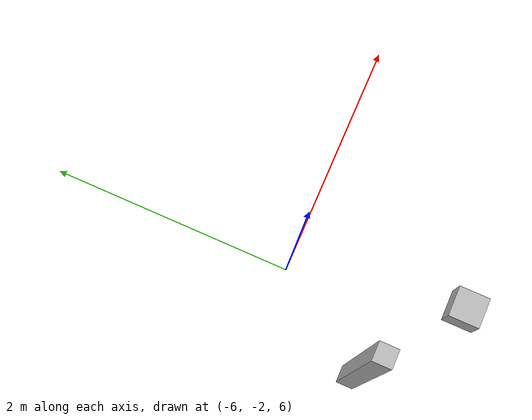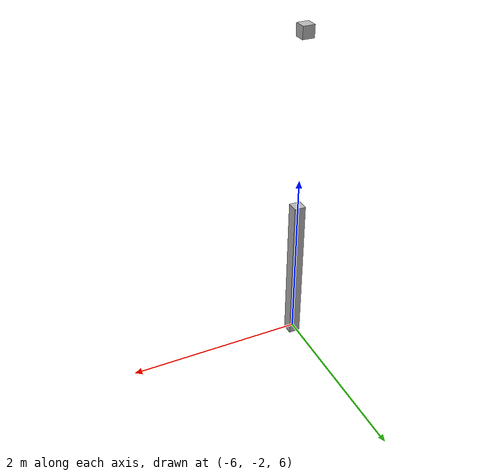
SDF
<sdf version="1.7">
 <world name="default">
  <model name="orthogonal_747_2.000.15_TS">
   <static>1</static>
   <link name="z_link_4_1_0">
    <inertial>
     <mass>1</mass>
     <inertia>
      <ixx>0.166667</ixx>
      <ixy>0</ixy>
      <ixz>0</ixz>
      <iyy>0.166667</iyy>
      <iyz>0</iyz>
      <izz>0.166667</izz>
     </inertia>
    </inertial>
    <pose>0 2.15 8.6 0 -0 0</pose>
    <visual name="visual_0">
     <laser_retro>3697</laser_retro>
     <geometry><box><size>0.15 1e-06 2</size></box></geometry>
     <material>
      <script><name>Gazebo/Grey</name><uri>file://media/materials/scripts/gazebo.material</uri></script>
      <shader type="pixel"><normal_map>__default__</normal_map></shader>
      <ambient>0.678 0.498 0.659 1</ambient>
      <diffuse>0.7 0.7 0.7 1</diffuse>
      <specular>0.01 0.01 0.01 1</specular>
      <emissive>0 0 0 1</emissive>
     </material>
     <pose>0 -0.075 0 0 -0 0</pose>
     <transparency>1</transparency>
    </visual>
    <visual name="visual_1">
     <laser_retro>3698</laser_retro>
     <geometry><box><size>0.15 1e-06 2</size></box></geometry>
     <material>
      <script><name>Gazebo/Grey</name><uri>file://media/materials/scripts/gazebo.material</uri></script>
      <shader type="pixel"><normal_map>__default__</normal_map></shader>
      <ambient>0.447 0.624 0.812 1</ambient>
      <diffuse>0.7 0.7 0.7 1</diffuse>
      <specular>0.01 0.01 0.01 1</specular>
      <emissive>0 0 0 1</emissive>
     </material>
     <pose>0 0.075 0 0 -0 0</pose>
     <transparency>1</transparency>
    </visual>
    <visual name="visual_2">
     <laser_retro>3699</laser_retro>
     <geometry><box><size>0.15 0.15 1e-06</size></box></geometry>
     <material>
      <script><name>Gazebo/Grey</name><uri>file://media/materials/scripts/gazebo.material</uri></script>
      <shader type="pixel"><normal_map>__default__</normal_map></shader>
      <ambient>0.988 0.686 0.243 1</ambient>
      <diffuse>0.7 0.7 0.7 1</diffuse>
      <specular>0.01 0.01 0.01 1</specular>
      <emissive>0 0 0 1</emissive>
     </material>
     <pose>0 0 -1 0 -0 0</pose>
     <transparency>1</transparency>
    </visual>
    <visual name="visual_3">
     <laser_retro>3700</laser_retro>
     <geometry><box><size>1e-06 0.15 2</size></box></geometry>
     <material>
      <script><name>Gazebo/Grey</name><uri>file://media/materials/scripts/gazebo.material</uri></script>
      <shader type="pixel"><normal_map>__default__</normal_map></shader>
      <ambient>0.988 0.914 0.31 1</ambient>
      <diffuse>0.7 0.7 0.7 1</diffuse>
      <specular>0.01 0.01 0.01 1</specular>
      <emissive>0 0 0 1</emissive>
     </material>
     <pose>0.075 0 0 0 -0 0</pose>
     <transparency>1</transparency>
    </visual>
    <visual name="visual_4">
     <laser_retro>3701</laser_retro>
     <geometry><box><size>0.15 0.15 1e-06</size></box></geometry>
     <material>
      <script><name>Gazebo/Grey</name><uri>file://media/materials/scripts/gazebo.material</uri></script>
      <shader type="pixel"><normal_map>__default__</normal_map></shader>
      <ambient>0.937 0.161 0.161 1</ambient>
      <diffuse>0.7 0.7 0.7 1</diffuse>
      <specular>0.01 0.01 0.01 1</specular>
      <emissive>0 0 0 1</emissive>
     </material>
     <pose>0 0 1 0 -0 0</pose>
     <transparency>1</transparency>
    </visual>
    <visual name="visual_5">
     <laser_retro>3702</laser_retro>
     <geometry><box><size>1e-06 0.15 2</size></box></geometry>
     <material>
      <script><name>Gazebo/Grey</name><uri>file://media/materials/scripts/gazebo.material</uri></script>
      <shader type="pixel"><normal_map>__default__</normal_map></shader>
      <ambient>0.541 0.886 0.204 1</ambient>
      <diffuse>0.7 0.7 0.7 1</diffuse>
      <specular>0.01 0.01 0.01 1</specular>
      <emissive>0 0 0 1</emissive>
     </material>
     <pose>-0.075 0 0 0 -0 0</pose>
     <transparency>1</transparency>
    </visual>
    <visual name="visual_texture">
     <geometry><box><size>0.149985 0.149985 1.9998</size></box></geometry>
     <material>
      <script>
       <uri>model://BASE_MODELS/simple_block_v2_textured/materials/scripts</uri>
       <uri>model://BASE_MODELS/simple_block_v2_textured/materials/textures</uri>
       <name>metal</name>
      </script>
     </material>
     <laser_retro>3703</laser_retro>
    </visual>
    <collision name="collision">
     <geometry><box><size>0.15 0.15 2</size></box></geometry>
     <surface>
      <friction>
       <ode><mu>1</mu><mu2>1</mu2><fdir1>0 0 0</fdir1><slip1>0</slip1><slip2>0</slip2></ode>
       <torsional>
        <coefficient>1</coefficient>
        <patch_radius>0</patch_radius>
        <surface_radius>0</surface_radius>
        <use_patch_radius>1</use_patch_radius>
        <ode><slip>0</slip></ode>
       </torsional>
      </friction>
      <bounce><restitution_coefficient>0</restitution_coefficient><threshold>1e+06</threshold></bounce>
      <contact>
       <collide_without_contact>0</collide_without_contact>
       <collide_without_contact_bitmask>1</collide_without_contact_bitmask>
       <collide_bitmask>1</collide_bitmask>
       <ode>
        <soft_cfm>0</soft_cfm>
        <soft_erp>0.2</soft_erp>
        <kp>1e+13</kp>
        <kd>1</kd>
        <max_vel>0.01</max_vel>
        <min_depth>0</min_depth>
       </ode>
       <bullet>
        <split_impulse>1</split_impulse>
        <split_impulse_penetration_threshold>-0.01</split_impulse_penetration_threshold>
        <soft_cfm>0</soft_cfm>
        <soft_erp>0.2</soft_erp>
        <kp>1e+13</kp>
        <kd>1</kd>
       </bullet>
      </contact>
     </surface>
    </collision>
   </link>
   <link name="u_link_5_1_0">
    <inertial>
     <mass>1</mass>
     <inertia>
      <ixx>0.166667</ixx>
      <ixy>0</ixy>
      <ixz>0</ixz>
      <iyy>0.166667</iyy>
      <iyz>0</iyz>
      <izz>0.166667</izz>
     </inertia>
    </inertial>
    <pose>0 2.15 11.825 0 -0 0</pose>
    <visual name="visual_0">
     <laser_retro>4593</laser_retro>
     <geometry><box><size>0.15 1e-06 0.15</size></box></geometry>
     <material>
      <script><name>Gazebo/Grey</name><uri>file://media/materials/scripts/gazebo.material</uri></script>
      <shader type="pixel"><normal_map>__default__</normal_map></shader>
      <ambient>0.678 0.498 0.659 1</ambient>
      <diffuse>0.7 0.7 0.7 1</diffuse>
      <specular>0.01 0.01 0.01 1</specular>
      <emissive>0 0 0 1</emissive>
     </material>
     <pose>0 -0.075 0 0 -0 0</pose>
     <transparency>1</transparency>
    </visual>
    <visual name="visual_1">
     <laser_retro>4594</laser_retro>
     <geometry><box><size>0.15 1e-06 0.15</size></box></geometry>
     <material>
      <script><name>Gazebo/Grey</name><uri>file://media/materials/scripts/gazebo.material</uri></script>
      <shader type="pixel"><normal_map>__default__</normal_map></shader>
      <ambient>0.447 0.624 0.812 1</ambient>
      <diffuse>0.7 0.7 0.7 1</diffuse>
      <specular>0.01 0.01 0.01 1</specular>
      <emissive>0 0 0 1</emissive>
     </material>
     <pose>0 0.075 0 0 -0 0</pose>
     <transparency>1</transparency>
    </visual>
    <visual name="visual_2">
     <laser_retro>4595</laser_retro>
     <geometry><box><size>0.15 0.15 1e-06</size></box></geometry>
     <material>
      <script><name>Gazebo/Grey</name><uri>file://media/materials/scripts/gazebo.material</uri></script>
      <shader type="pixel"><normal_map>__default__</normal_map></shader>
      <ambient>0.988 0.686 0.243 1</ambient>
      <diffuse>0.7 0.7 0.7 1</diffuse>
      <specular>0.01 0.01 0.01 1</specular>
      <emissive>0 0 0 1</emissive>
     </material>
     <pose>0 0 -0.075 0 -0 0</pose>
     <transparency>1</transparency>
    </visual>
    <visual name="visual_3">
     <laser_retro>4596</laser_retro>
     <geometry><box><size>1e-06 0.15 0.15</size></box></geometry>
     <material>
      <script><name>Gazebo/Grey</name><uri>file://media/materials/scripts/gazebo.material</uri></script>
      <shader type="pixel"><normal_map>__default__</normal_map></shader>
      <ambient>0.988 0.914 0.31 1</ambient>
      <diffuse>0.7 0.7 0.7 1</diffuse>
      <specular>0.01 0.01 0.01 1</specular>
      <emissive>0 0 0 1</emissive>
     </material>
     <pose>0.075 0 0 0 -0 0</pose>
     <transparency>1</transparency>
    </visual>
    <visual name="visual_4">
     <laser_retro>4597</laser_retro>
     <geometry><box><size>0.15 0.15 1e-06</size></box></geometry>
     <material>
      <script><name>Gazebo/Grey</name><uri>file://media/materials/scripts/gazebo.material</uri></script>
      <shader type="pixel"><normal_map>__default__</normal_map></shader>
      <ambient>0.937 0.161 0.161 1</ambient>
      <diffuse>0.7 0.7 0.7 1</diffuse>
      <specular>0.01 0.01 0.01 1</specular>
      <emissive>0 0 0 1</emissive>
     </material>
     <pose>0 0 0.075 0 -0 0</pose>
     <transparency>1</transparency>
    </visual>
    <visual name="visual_5">
     <laser_retro>4598</laser_retro>
     <geometry><box><size>1e-06 0.15 0.15</size></box></geometry>
     <material>
      <script><name>Gazebo/Grey</name><uri>file://media/materials/scripts/gazebo.material</uri></script>
      <shader type="pixel"><normal_map>__default__</normal_map></shader>
      <ambient>0.541 0.886 0.204 1</ambient>
      <diffuse>0.7 0.7 0.7 1</diffuse>
      <specular>0.01 0.01 0.01 1</specular>
      <emissive>0 0 0 1</emissive>
     </material>
     <pose>-0.075 0 0 0 -0 0</pose>
     <transparency>1</transparency>
    </visual>
    <visual name="visual_texture">
     <geometry><box><size>0.149985 0.149985 0.149985</size></box></geometry>
     <material>
      <script>
       <uri>model://BASE_MODELS/simple_block_v2_textured/materials/scripts</uri>
       <uri>model://BASE_MODELS/simple_block_v2_textured/materials/textures</uri>
       <name>metal</name>
      </script>
     </material>
     <laser_retro>4599</laser_retro>
    </visual>
    <collision name="collision">
     <geometry><box><size>0.15 0.15 0.15</size></box></geometry>
     <surface>
      <friction>
       <ode><mu>1</mu><mu2>1</mu2><fdir1>0 0 0</fdir1><slip1>0</slip1><slip2>0</slip2></ode>
       <torsional>
        <coefficient>1</coefficient>
        <patch_radius>0</patch_radius>
        <surface_radius>0</surface_radius>
        <use_patch_radius>1</use_patch_radius>
        <ode><slip>0</slip></ode>
       </torsional>
      </friction>
      <bounce><restitution_coefficient>0</restitution_coefficient><threshold>1e+06</threshold></bounce>
      <contact>
       <collide_without_contact>0</collide_without_contact>
       <collide_without_contact_bitmask>1</collide_without_contact_bitmask>
       <collide_bitmask>1</collide_bitmask>
       <ode>
        <soft_cfm>0</soft_cfm>
        <soft_erp>0.2</soft_erp>
        <kp>1e+13</kp>
        <kd>1</kd>
        <max_vel>0.01</max_vel>
        <min_depth>0</min_depth>
       </ode>
       <bullet>
        <split_impulse>1</split_impulse>
        <split_impulse_penetration_threshold>-0.01</split_impulse_penetration_threshold>
        <soft_cfm>0</soft_cfm>
        <soft_erp>0.2</soft_erp>
        <kp>1e+13</kp>
        <kd>1</kd>
       </bullet>
      </contact>
     </surface>
    </collision>
   </link>
   <pose>-6.47624 -5 -2.5 0 -0 0</pose>
  </model>
 </world>
</sdf>
